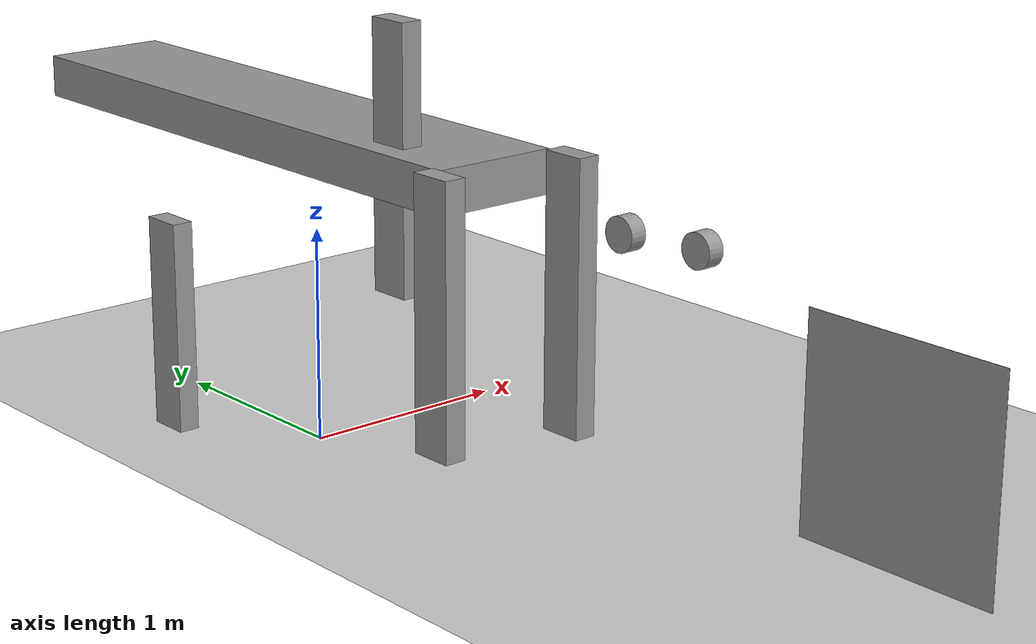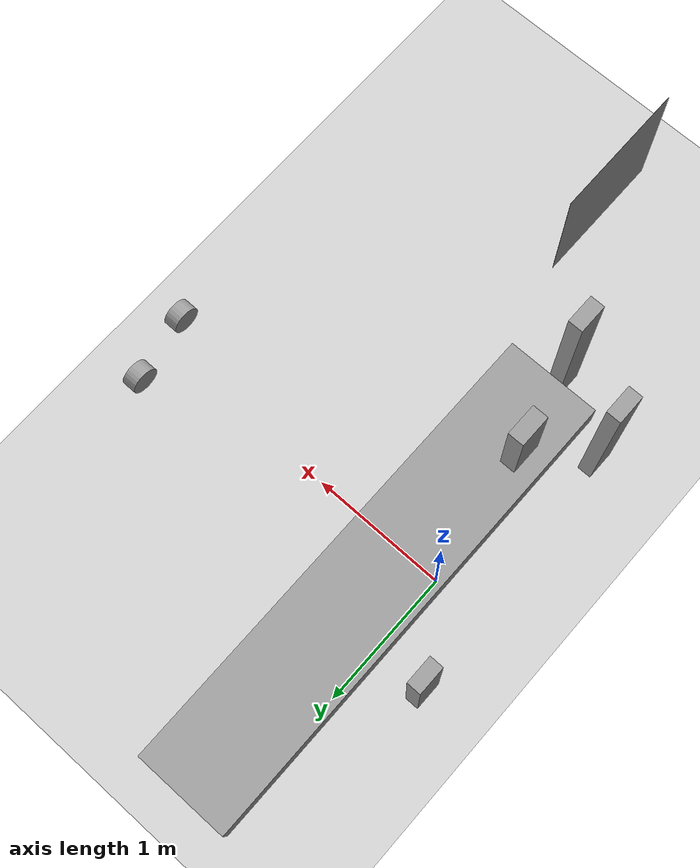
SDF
<sdf version="1.7">
 <world name="default">
  <light name="sun" type="directional">
   <pose>0 0 10 0 -0 0</pose>
   <diffuse>0.8 0.8 0.8 1</diffuse>
   <specular>0.2 0.2 0.2 1</specular>
   <attenuation>
    <range>1000</range>
    <constant>0.9</constant>
    <linear>0.01</linear>
    <quadratic>0.001</quadratic>
   </attenuation>
   <direction>-0.5 0.1 -0.9</direction>
   <spot><inner_angle>0</inner_angle><outer_angle>0</outer_angle><falloff>0</falloff></spot>
  </light>
  <model name="ground_plane">
   <static>1</static>
   <link name="link">
    <collision name="collision">
     <geometry><plane><normal>0 0 1</normal><size>100 100</size></plane></geometry>
     <surface>
      <contact><collide_bitmask>65535</collide_bitmask></contact>
      <friction><ode><mu>100</mu><mu2>50</mu2></ode></friction>
     </surface>
    </collision>
    <visual name="visual">
     <cast_shadows>0</cast_shadows>
     <geometry><plane><normal>0 0 1</normal><size>100 100</size></plane></geometry>
     <material>
      <script><uri>file://media/materials/scripts/gazebo.material</uri><name>Gazebo/Grey</name></script>
     </material>
    </visual>
   </link>
  </model>
  <gravity>0 0 -9.8</gravity>
  <magnetic_field>6e-06 2.3e-05 -4.2e-05</magnetic_field>
  <atmosphere type="adiabatic"/>
  <physics type="ode">
   <max_step_size>0.001</max_step_size>
   <real_time_factor>1</real_time_factor>
   <real_time_update_rate>1000</real_time_update_rate>
  </physics>
  <scene><ambient>0.4 0.4 0.4 1</ambient><background>0.7 0.7 0.7 1</background><shadows>1</shadows></scene>
  <spherical_coordinates>
   <surface_model>EARTH_WGS84</surface_model>
   <latitude_deg>0</latitude_deg>
   <longitude_deg>0</longitude_deg>
   <elevation>0</elevation>
   <heading_deg>0</heading_deg>
  </spherical_coordinates>
  <model name="unit_box">
   <pose>0.827626 -2.69999 0.5 1.5708 0 -2e-06</pose>
   <link name="link">
    <inertial>
     <mass>1</mass>
     <inertia>
      <ixx>0.166667</ixx>
      <ixy>0</ixy>
      <ixz>0</ixz>
      <iyy>0.166667</iyy>
      <iyz>0</iyz>
      <izz>0.166667</izz>
     </inertia>
    </inertial>
    <collision name="collision"><geometry><box><size>0.00172878 1 1</size></box></geometry></collision>
    <visual name="visual">
     <geometry><box><size>0.00172878 1 1</size></box></geometry>
     <material>
      <script><name>Gazebo/Grey</name><uri>file://media/materials/scripts/gazebo.material</uri></script>
     </material>
    </visual>
   </link>
  </model>
  <model name="trolley">
   <link name="link_1">
    <inertial>
     <mass>1</mass>
     <inertia>
      <ixx>0.166667</ixx>
      <ixy>0</ixy>
      <ixz>0</ixz>
      <iyy>0.166667</iyy>
      <iyz>0</iyz>
      <izz>0.166667</izz>
     </inertia>
    </inertial>
    <pose>-0.478895 0.718803 0.52617 0 -0 0</pose>
    <visual name="visual">
     <geometry><box><size>0.6 3 0.2</size></box></geometry>
     <material>
      <lighting>1</lighting>
      <script><uri>file://media/materials/scripts/gazebo.material</uri><name>Gazebo/Grey</name></script>
      <shader type="pixel"><normal_map>__default__</normal_map></shader>
      <ambient>0.3 0.3 0.3 1</ambient>
      <diffuse>0.7 0.7 0.7 1</diffuse>
      <specular>0.01 0.01 0.01 1</specular>
      <emissive>0 0 0 1</emissive>
     </material>
    </visual>
    <collision name="collision">
     <geometry><box><size>0.6 3 0.2</size></box></geometry>
     <surface>
      <friction>
       <ode><mu>1</mu><mu2>1</mu2><fdir1>0 0 0</fdir1><slip1>0</slip1><slip2>0</slip2></ode>
       <torsional>
        <coefficient>1</coefficient>
        <patch_radius>0</patch_radius>
        <surface_radius>0</surface_radius>
        <use_patch_radius>1</use_patch_radius>
        <ode><slip>0</slip></ode>
       </torsional>
      </friction>
      <bounce><restitution_coefficient>0</restitution_coefficient><threshold>1e+06</threshold></bounce>
      <contact>
       <collide_without_contact>0</collide_without_contact>
       <collide_without_contact_bitmask>1</collide_without_contact_bitmask>
       <collide_bitmask>1</collide_bitmask>
       <ode>
        <soft_cfm>0</soft_cfm>
        <soft_erp>0.2</soft_erp>
        <kp>1e+13</kp>
        <kd>1</kd>
        <max_vel>0.01</max_vel>
        <min_depth>0</min_depth>
       </ode>
       <bullet>
        <split_impulse>1</split_impulse>
        <split_impulse_penetration_threshold>-0.01</split_impulse_penetration_threshold>
        <soft_cfm>0</soft_cfm>
        <soft_erp>0.2</soft_erp>
        <kp>1e+13</kp>
        <kd>1</kd>
       </bullet>
      </contact>
     </surface>
    </collision>
   </link>
   <link name="link_2">
    <inertial>
     <mass>1</mass>
     <inertia>
      <ixx>0.166667</ixx>
      <ixy>0</ixy>
      <ixz>0</ixz>
      <iyy>0.166667</iyy>
      <iyz>0</iyz>
      <izz>0.166667</izz>
     </inertia>
    </inertial>
    <pose>-0.394514 -1.15854 0.114668 0 -0 0</pose>
    <visual name="visual">
     <geometry><box><size>0.1 0.2 1.2</size></box></geometry>
     <material>
      <lighting>1</lighting>
      <script><uri>file://media/materials/scripts/gazebo.material</uri><name>Gazebo/Grey</name></script>
      <shader type="pixel"><normal_map>__default__</normal_map></shader>
      <ambient>0.3 0.3 0.3 1</ambient>
      <diffuse>0.7 0.7 0.7 1</diffuse>
      <specular>0.01 0.01 0.01 1</specular>
      <emissive>0 0 0 1</emissive>
     </material>
    </visual>
    <collision name="collision">
     <geometry><box><size>0.1 0.2 1.2</size></box></geometry>
     <surface>
      <friction>
       <ode><mu>1</mu><mu2>1</mu2><fdir1>0 0 0</fdir1><slip1>0</slip1><slip2>0</slip2></ode>
       <torsional>
        <coefficient>1</coefficient>
        <patch_radius>0</patch_radius>
        <surface_radius>0</surface_radius>
        <use_patch_radius>1</use_patch_radius>
        <ode><slip>0</slip></ode>
       </torsional>
      </friction>
      <bounce><restitution_coefficient>0</restitution_coefficient><threshold>1e+06</threshold></bounce>
      <contact>
       <collide_without_contact>0</collide_without_contact>
       <collide_without_contact_bitmask>1</collide_without_contact_bitmask>
       <collide_bitmask>1</collide_bitmask>
       <ode>
        <soft_cfm>0</soft_cfm>
        <soft_erp>0.2</soft_erp>
        <kp>1e+13</kp>
        <kd>1</kd>
        <max_vel>0.01</max_vel>
        <min_depth>0</min_depth>
       </ode>
       <bullet>
        <split_impulse>1</split_impulse>
        <split_impulse_penetration_threshold>-0.01</split_impulse_penetration_threshold>
        <soft_cfm>0</soft_cfm>
        <soft_erp>0.2</soft_erp>
        <kp>1e+13</kp>
        <kd>1</kd>
       </bullet>
      </contact>
     </surface>
    </collision>
   </link>
   <link name="link_2_clone">
    <inertial>
     <mass>1</mass>
     <inertia>
      <ixx>0.166667</ixx>
      <ixy>0</ixy>
      <ixz>0</ixz>
      <iyy>0.166667</iyy>
      <iyz>0</iyz>
      <izz>0.166667</izz>
     </inertia>
    </inertial>
    <pose>-0.881024 -0.905716 0.051894 0 -0 0</pose>
    <visual name="visual">
     <geometry><box><size>0.1 0.2 1.2</size></box></geometry>
     <material>
      <lighting>1</lighting>
      <script><uri>file://media/materials/scripts/gazebo.material</uri><name>Gazebo/Grey</name></script>
      <shader type="pixel"><normal_map>__default__</normal_map></shader>
      <ambient>0.3 0.3 0.3 1</ambient>
      <diffuse>0.7 0.7 0.7 1</diffuse>
      <specular>0.01 0.01 0.01 1</specular>
      <emissive>0 0 0 1</emissive>
     </material>
    </visual>
    <collision name="collision">
     <geometry><box><size>0.1 0.2 1.2</size></box></geometry>
     <surface>
      <friction>
       <ode><mu>1</mu><mu2>1</mu2><fdir1>0 0 0</fdir1><slip1>0</slip1><slip2>0</slip2></ode>
       <torsional>
        <coefficient>1</coefficient>
        <patch_radius>0</patch_radius>
        <surface_radius>0</surface_radius>
        <use_patch_radius>1</use_patch_radius>
        <ode><slip>0</slip></ode>
       </torsional>
      </friction>
      <bounce><restitution_coefficient>0</restitution_coefficient><threshold>1e+06</threshold></bounce>
      <contact>
       <collide_without_contact>0</collide_without_contact>
       <collide_without_contact_bitmask>1</collide_without_contact_bitmask>
       <collide_bitmask>1</collide_bitmask>
       <ode>
        <soft_cfm>0</soft_cfm>
        <soft_erp>0.2</soft_erp>
        <kp>1e+13</kp>
        <kd>1</kd>
        <max_vel>0.01</max_vel>
        <min_depth>0</min_depth>
       </ode>
       <bullet>
        <split_impulse>1</split_impulse>
        <split_impulse_penetration_threshold>-0.01</split_impulse_penetration_threshold>
        <soft_cfm>0</soft_cfm>
        <soft_erp>0.2</soft_erp>
        <kp>1e+13</kp>
        <kd>1</kd>
       </bullet>
      </contact>
     </surface>
    </collision>
   </link>
   <link name="link_2_clone_0">
    <inertial>
     <mass>1</mass>
     <inertia>
      <ixx>0.166667</ixx>
      <ixy>0</ixy>
      <ixz>0</ixz>
      <iyy>0.166667</iyy>
      <iyz>0</iyz>
      <izz>0.166667</izz>
     </inertia>
    </inertial>
    <pose>-0.618193 -0.310261 0.565431 0 -0 0</pose>
    <visual name="visual">
     <geometry><box><size>0.1 0.2 1.2</size></box></geometry>
     <material>
      <lighting>1</lighting>
      <script><uri>file://media/materials/scripts/gazebo.material</uri><name>Gazebo/Grey</name></script>
      <shader type="pixel"><normal_map>__default__</normal_map></shader>
      <ambient>0.3 0.3 0.3 1</ambient>
      <diffuse>0.7 0.7 0.7 1</diffuse>
      <specular>0.01 0.01 0.01 1</specular>
      <emissive>0 0 0 1</emissive>
     </material>
    </visual>
    <collision name="collision">
     <geometry><box><size>0.1 0.2 1.2</size></box></geometry>
     <surface>
      <friction>
       <ode><mu>1</mu><mu2>1</mu2><fdir1>0 0 0</fdir1><slip1>0</slip1><slip2>0</slip2></ode>
       <torsional>
        <coefficient>1</coefficient>
        <patch_radius>0</patch_radius>
        <surface_radius>0</surface_radius>
        <use_patch_radius>1</use_patch_radius>
        <ode><slip>0</slip></ode>
       </torsional>
      </friction>
      <bounce><restitution_coefficient>0</restitution_coefficient><threshold>1e+06</threshold></bounce>
      <contact>
       <collide_without_contact>0</collide_without_contact>
       <collide_without_contact_bitmask>1</collide_without_contact_bitmask>
       <collide_bitmask>1</collide_bitmask>
       <ode>
        <soft_cfm>0</soft_cfm>
        <soft_erp>0.2</soft_erp>
        <kp>1e+13</kp>
        <kd>1</kd>
        <max_vel>0.01</max_vel>
        <min_depth>0</min_depth>
       </ode>
       <bullet>
        <split_impulse>1</split_impulse>
        <split_impulse_penetration_threshold>-0.01</split_impulse_penetration_threshold>
        <soft_cfm>0</soft_cfm>
        <soft_erp>0.2</soft_erp>
        <kp>1e+13</kp>
        <kd>1</kd>
       </bullet>
      </contact>
     </surface>
    </collision>
   </link>
   <link name="link_2_clone_1">
    <inertial>
     <mass>1</mass>
     <inertia>
      <ixx>0.166667</ixx>
      <ixy>0</ixy>
      <ixz>0</ixz>
      <iyy>0.166667</iyy>
      <iyz>0</iyz>
      <izz>0.166667</izz>
     </inertia>
    </inertial>
    <pose>-0.99218 0.888053 -0.491161 0 -0 0</pose>
    <visual name="visual">
     <geometry><box><size>0.1 0.2 1.2</size></box></geometry>
     <material>
      <lighting>1</lighting>
      <script><uri>file://media/materials/scripts/gazebo.material</uri><name>Gazebo/Grey</name></script>
      <shader type="pixel"><normal_map>__default__</normal_map></shader>
      <ambient>0.3 0.3 0.3 1</ambient>
      <diffuse>0.7 0.7 0.7 1</diffuse>
      <specular>0.01 0.01 0.01 1</specular>
      <emissive>0 0 0 1</emissive>
     </material>
    </visual>
    <collision name="collision">
     <geometry><box><size>0.1 0.2 1.2</size></box></geometry>
     <surface>
      <friction>
       <ode><mu>1</mu><mu2>1</mu2><fdir1>0 0 0</fdir1><slip1>0</slip1><slip2>0</slip2></ode>
       <torsional>
        <coefficient>1</coefficient>
        <patch_radius>0</patch_radius>
        <surface_radius>0</surface_radius>
        <use_patch_radius>1</use_patch_radius>
        <ode><slip>0</slip></ode>
       </torsional>
      </friction>
      <bounce><restitution_coefficient>0</restitution_coefficient><threshold>1e+06</threshold></bounce>
      <contact>
       <collide_without_contact>0</collide_without_contact>
       <collide_without_contact_bitmask>1</collide_without_contact_bitmask>
       <collide_bitmask>1</collide_bitmask>
       <ode>
        <soft_cfm>0</soft_cfm>
        <soft_erp>0.2</soft_erp>
        <kp>1e+13</kp>
        <kd>1</kd>
        <max_vel>0.01</max_vel>
        <min_depth>0</min_depth>
       </ode>
       <bullet>
        <split_impulse>1</split_impulse>
        <split_impulse_penetration_threshold>-0.01</split_impulse_penetration_threshold>
        <soft_cfm>0</soft_cfm>
        <soft_erp>0.2</soft_erp>
        <kp>1e+13</kp>
        <kd>1</kd>
       </bullet>
      </contact>
     </surface>
    </collision>
   </link>
   <link name="link_3">
    <inertial>
     <mass>1</mass>
     <inertia><ixx>0.145833</ixx><ixy>0</ixy><ixz>0</ixz><iyy>0.145833</iyy><iyz>0</iyz><izz>0.125</izz></inertia>
    </inertial>
    <pose>1.72694 0.148328 -0.383506 0 -0 0</pose>
    <visual name="visual">
     <pose>0 0 0 0 1.57 0</pose>
     <geometry><cylinder><radius>0.1</radius><length>0.1</length></cylinder></geometry>
     <material>
      <lighting>1</lighting>
      <script><uri>file://media/materials/scripts/gazebo.material</uri><name>Gazebo/Grey</name></script>
      <shader type="pixel"><normal_map>__default__</normal_map></shader>
      <ambient>0.3 0.3 0.3 1</ambient>
      <diffuse>0.7 0.7 0.7 1</diffuse>
      <specular>0.01 0.01 0.01 1</specular>
      <emissive>0 0 0 1</emissive>
     </material>
    </visual>
    <collision name="collision">
     <pose>0 0 0 0 1.57 0</pose>
     <geometry><cylinder><radius>0.1</radius><length>0.1</length></cylinder></geometry>
     <surface>
      <friction>
       <ode><mu>1</mu><mu2>1</mu2><fdir1>0 0 0</fdir1><slip1>0</slip1><slip2>0</slip2></ode>
       <torsional>
        <coefficient>1</coefficient>
        <patch_radius>0</patch_radius>
        <surface_radius>0</surface_radius>
        <use_patch_radius>1</use_patch_radius>
        <ode><slip>0</slip></ode>
       </torsional>
      </friction>
      <bounce><restitution_coefficient>0</restitution_coefficient><threshold>1e+06</threshold></bounce>
      <contact>
       <collide_without_contact>0</collide_without_contact>
       <collide_without_contact_bitmask>1</collide_without_contact_bitmask>
       <collide_bitmask>1</collide_bitmask>
       <ode>
        <soft_cfm>0</soft_cfm>
        <soft_erp>0.2</soft_erp>
        <kp>1e+13</kp>
        <kd>1</kd>
        <max_vel>0.01</max_vel>
        <min_depth>0</min_depth>
       </ode>
       <bullet>
        <split_impulse>1</split_impulse>
        <split_impulse_penetration_threshold>-0.01</split_impulse_penetration_threshold>
        <soft_cfm>0</soft_cfm>
        <soft_erp>0.2</soft_erp>
        <kp>1e+13</kp>
        <kd>1</kd>
       </bullet>
      </contact>
     </surface>
    </collision>
   </link>
   <link name="link_3_clone">
    <inertial>
     <mass>1</mass>
     <inertia><ixx>0.145833</ixx><ixy>0</ixy><ixz>0</ixz><iyy>0.145833</iyy><iyz>0</iyz><izz>0.125</izz></inertia>
    </inertial>
    <pose>1.63787 0.619329 -0.383506 0 -0 0</pose>
    <visual name="visual">
     <pose>0 0 0 0 1.57 0</pose>
     <geometry><cylinder><radius>0.1</radius><length>0.1</length></cylinder></geometry>
     <material>
      <lighting>1</lighting>
      <script><uri>file://media/materials/scripts/gazebo.material</uri><name>Gazebo/Grey</name></script>
      <shader type="pixel"><normal_map>__default__</normal_map></shader>
      <ambient>0.3 0.3 0.3 1</ambient>
      <diffuse>0.7 0.7 0.7 1</diffuse>
      <specular>0.01 0.01 0.01 1</specular>
      <emissive>0 0 0 1</emissive>
     </material>
    </visual>
    <collision name="collision">
     <pose>0 0 0 0 1.57 0</pose>
     <geometry><cylinder><radius>0.1</radius><length>0.1</length></cylinder></geometry>
     <surface>
      <friction>
       <ode><mu>1</mu><mu2>1</mu2><fdir1>0 0 0</fdir1><slip1>0</slip1><slip2>0</slip2></ode>
       <torsional>
        <coefficient>1</coefficient>
        <patch_radius>0</patch_radius>
        <surface_radius>0</surface_radius>
        <use_patch_radius>1</use_patch_radius>
        <ode><slip>0</slip></ode>
       </torsional>
      </friction>
      <bounce><restitution_coefficient>0</restitution_coefficient><threshold>1e+06</threshold></bounce>
      <contact>
       <collide_without_contact>0</collide_without_contact>
       <collide_without_contact_bitmask>1</collide_without_contact_bitmask>
       <collide_bitmask>1</collide_bitmask>
       <ode>
        <soft_cfm>0</soft_cfm>
        <soft_erp>0.2</soft_erp>
        <kp>1e+13</kp>
        <kd>1</kd>
        <max_vel>0.01</max_vel>
        <min_depth>0</min_depth>
       </ode>
       <bullet>
        <split_impulse>1</split_impulse>
        <split_impulse_penetration_threshold>-0.01</split_impulse_penetration_threshold>
        <soft_cfm>0</soft_cfm>
        <soft_erp>0.2</soft_erp>
        <kp>1e+13</kp>
        <kd>1</kd>
       </bullet>
      </contact>
     </surface>
    </collision>
   </link>
   <joint name="link_1_JOINT_0" type="fixed">
    <parent>link_1</parent>
    <child>link_2</child>
    <physics>
     <ode><limit><cfm>0</cfm><erp>0.2</erp></limit><suspension><cfm>0</cfm><erp>0.2</erp></suspension></ode>
    </physics>
   </joint>
   <joint name="link_1_JOINT_1" type="revolute">
    <parent>link_1</parent>
    <child>link_2_clone</child>
    <axis>
     <xyz>1 0 0</xyz>
     <limit>
      <lower>-1.79769e+308</lower>
      <upper>1.79769e+308</upper>
      <effort>-1</effort>
      <velocity>-1</velocity>
     </limit>
     <dynamics>
      <spring_reference>0</spring_reference>
      <spring_stiffness>0</spring_stiffness>
      <damping>0</damping>
     </dynamics>
    </axis>
    <physics>
     <ode><limit><cfm>0</cfm><erp>0.2</erp></limit><suspension><cfm>0</cfm><erp>0.2</erp></suspension></ode>
    </physics>
   </joint>
   <joint name="link_1_JOINT_2" type="revolute">
    <parent>link_1</parent>
    <child>link_2_clone_0</child>
    <axis>
     <xyz>1 0 0</xyz>
     <limit>
      <lower>-1.79769e+308</lower>
      <upper>1.79769e+308</upper>
      <effort>-1</effort>
      <velocity>-1</velocity>
     </limit>
     <dynamics>
      <spring_reference>0</spring_reference>
      <spring_stiffness>0</spring_stiffness>
      <damping>0</damping>
     </dynamics>
    </axis>
    <physics>
     <ode><limit><cfm>0</cfm><erp>0.2</erp></limit><suspension><cfm>0</cfm><erp>0.2</erp></suspension></ode>
    </physics>
   </joint>
   <static>0</static>
   <pose>0.599488 -0.296844 0.883506 0 -0 0</pose>
  </model>
 </world>
</sdf>
